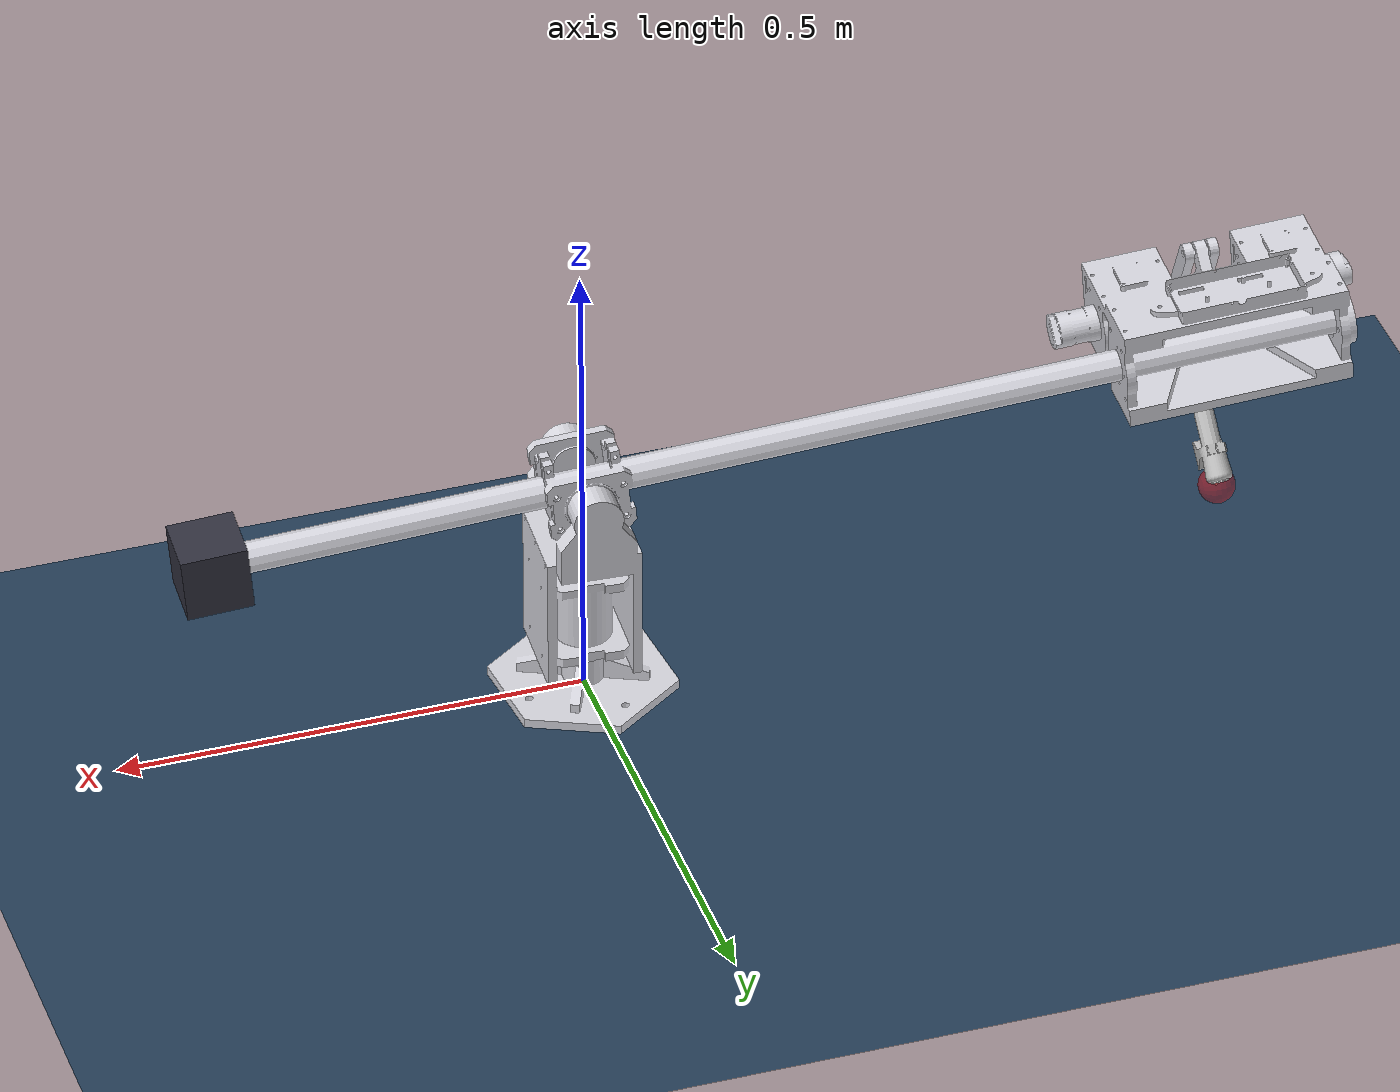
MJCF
<mujoco model="HOPPY scene">
  <!-- Scene = world (floor, light, sky) + the HOPPY robot.            -->
  <!-- Solver settings per rubrica Fase 3.1 (hard contact).            -->
  <include file="hoppy.xml"/>

  <option timestep="0.001" integrator="RK4" solver="Newton"
          iterations="50" tolerance="1e-8" gravity="0 0 -9.81"/>

  <visual>
    <headlight diffuse="0.6 0.6 0.6" ambient="0.3 0.3 0.3" specular="0 0 0"/>
    <rgba haze="0.15 0.25 0.35 1"/>
    <global azimuth="120" elevation="-20" offwidth="1280" offheight="720"/>
    <map force="0.05" zfar="30"/>
  </visual>

  <asset>
    <texture type="skybox" builtin="gradient" rgb1="0.3 0.5 0.7" rgb2="0 0 0"
             width="512" height="3072"/>
    <texture type="2d" name="groundplane" builtin="checker" mark="edge"
             rgb1="0.2 0.3 0.4" rgb2="0.1 0.2 0.3" markrgb="0.8 0.8 0.8"
             width="300" height="300"/>
    <material name="groundplane" texture="groundplane" texuniform="true"
              texrepeat="5 5" reflectance="0.2"/>
  </asset>

  <worldbody>
    <light pos="0 0 3.5" dir="0 0 -1" directional="true"/>
    <light pos="1 -1 2.0" dir="-0.5 0.5 -1"/>
    <!-- floor at z=0; foot rest height ~0.044 m so it drops into contact -->
    <geom name="floor" type="plane" size="0 0 0.05" material="groundplane"
          condim="3" friction="0.9 0.02 0.001"
          solref="0.004 1" solimp="0.95 0.99 0.001"/>
  </worldbody>
</mujoco>

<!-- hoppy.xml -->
<mujoco model="HOPPY-E0">
  <!--  HOPPY: monoped on a planarizing gantry (boom).               -->
  <!--  Kinematic tree from HOPPY-E0-final.urdf (SolidWorks export).  -->
  <!--  DoF map (rubrica Fase 1.1):                                   -->
  <!--    joint1 -> yaw    : gantry, PASSIVE  (boom sweep about tower) -->
  <!--    joint2 -> pitch  : gantry, PASSIVE  (vertical hop DoF)      -->
  <!--    joint3 -> hip    : leg,    ACTIVE                           -->
  <!--    joint4 -> knee   : leg,    ACTIVE  (+ parallel spring)      -->
  <!--  base_link is the central tower: rigidly fixed to the world.   -->
  <!--  Geometry is the FAITHFUL SolidWorks/URDF export: the leg swings -->
  <!--  in the boom's TANGENTIAL-vertical plane (hip/knee axes ~perp to -->
  <!--  pitch), so pushing off drives the passive yaw -> HOPPY HOPS     -->
  <!--  FORWARD, lapping the tower (its real locomotion). yaw is made    -->
  <!--  continuous (no range) and v_des sets the cruise speed (~1 lap/   -->
  <!--  9 s, rubrica Fase 4.4). Raise joint1 damping to brake -> in place.-->

  <compiler angle="radian" meshdir="meshes" autolimits="true"/>

  <!-- ====================== MOTOR PARAMETERS ====================== -->
  <!-- Physical motor: goBILDA 5202 series (RS-555 + planetary box).   -->
  <!-- HOPPY runs the SAME motor on hip & knee but with DIFFERENT gear -->
  <!-- ratios (CAD: 5202-..-0027). Authoritative constants are taken   -->
  <!-- from the HOPPY reference model (Simulator_MATLAB/get_params.m),  -->
  <!-- which the rubrica (1.2) mandates: N_H = 26.9, N_K = 28.8.        -->
  <!--   Gear ratio   N_H = 26.9 (hip),  N_K = 28.8 (knee)            -->
  <!--   Rotor inertia I_r = 7e-6 kg m^2  (HOPPY measured value)       -->
  <!--   Coil R = 1.30 ohm,  kT = 0.0135 N m/A,  kv = 0.0186 V s/rad   -->
  <!--   Limits  V <= 12 V,  I <= 30 A  (stall torque ~3.3 N m/joint)  -->
  <!--   Reflected rotor inertia (armature)  I_ref = N^2 * I_r:        -->
  <!--     hip : 26.9^2 * 7e-6 = 5.065e-3 kg m^2                       -->
  <!--     knee: 28.8^2 * 7e-6 = 5.806e-3 kg m^2                       -->
  <!--   Dissipation (rubrica 1.3) is split into its 3 named effects:  -->
  <!--     - back-EMF  b = kv*kT*N^2/R  (0.140 hip / 0.160 knee):      -->
  <!--       modeled EXPLICITLY by the voltage actuator in the brain   -->
  <!--       (tau->V->i->tau); NOT duplicated as joint damping.        -->
  <!--     - gearbox viscous loss -> joint damping = 0.02              -->
  <!--     - gearbox Coulomb friction -> frictionloss = 0.10           -->
  <!--   torque saturation: V<=12 V & I<=30 A bound tau to ~3.4 N m;   -->
  <!--     an explicit clip at tau_max=3.73 N m closes Fase 2.1.       -->
  <!--   encoder = 751.8 PPR out * 4 (quad) -> 2.086e-3 rad/count     -->
  <!--   yaw/pitch: passive gantry boom bearings, friction damping 0.2 -->
  <!--   Knee parallel spring: k = 30 N m/rad, rest = +0.30 rad        -->
  <!--   (stores/releases hop energy, rubrica 1.4)                     -->
  <!--   Leg geometry is the FAITHFUL URDF export (Link3/Link4 frames   -->
  <!--   and meshes untouched) -> tangential swing -> forward travel.   -->

  <default>
    <default class="hoppy">
      <geom contype="0" conaffinity="0" group="2" type="mesh" rgba="0.85 0.85 0.88 1"/>
      <joint type="hinge" frictionloss="0.0"/>
      <default class="gantry">         <!-- passive yaw / pitch -->
        <!-- boom-bearing viscous friction (rubrica 1.3). Yaw is the forward -->
        <!-- travel DoF; this damping just keeps it smooth, not locked.       -->
        <joint damping="0.2"/>
      </default>
      <default class="leg">            <!-- active hip / knee: see MOTOR block -->
        <!-- damping = gearbox VISCOUS loss only (back-EMF is in the voltage    -->
        <!-- actuator, so it is not double-counted here); frictionloss = Coulomb -->
        <joint damping="0.02" frictionloss="0.10"/>  <!-- armature per joint -->
      </default>
      <default class="foot">          <!-- point contact -->
        <geom contype="1" conaffinity="1" group="3" type="sphere" size="0.012"
              rgba="0.1 0.1 0.1 1" friction="0.9 0.02 0.001"
              solref="0.004 1" solimp="0.95 0.99 0.001"/>
      </default>
    </default>
  </default>

  <asset>
    <mesh name="base_link" file="base_link.STL"/>
    <mesh name="Link1"     file="Link1.STL"/>
    <mesh name="Link2"     file="Link2.STL"/>
    <mesh name="Link3"     file="Link3.STL"/>
    <mesh name="Link4"     file="Link4.STL"/>
  </asset>

  <worldbody>
    <!-- base_link: central tower, fixed to world -->
    <body name="base_link" childclass="hoppy">
      <geom mesh="base_link"/>

      <!-- joint1: YAW (passive gantry rotation about vertical) = the FORWARD   -->
      <!-- TRAVEL DoF. Made CONTINUOUS (no range limit) so HOPPY can lap the     -->
      <!-- tower endlessly (the URDF's ±180° was a SolidWorks export default     -->
      <!-- that stopped it half-way). `v_des` (controller) sets forward speed;   -->
      <!-- raise this joint's damping to a yaw brake (~18) to hop ~in place.     -->
      <body name="Link1" pos="0 0 0.04">
        <inertial pos="1.19035e-06 -7.23296e-08 0.110977"
                  quat="0.999539 -3.72317e-07 -1.22626e-05 -0.0303481"
                  mass="1.05189" diaginertia="0.0015755 0.00119525 0.000930447"/>
        <joint name="yaw" class="gantry" axis="0 0 1" limited="false"/>
        <geom mesh="Link1"/>

        <!-- joint2: PITCH (passive gantry elevation -> hop height) -->
        <body name="Link2" pos="-0.00227444 -0.037431 0.21"
              quat="0.705252 0.707058 0.00831865 -0.0511876">
          <inertial pos="-0.513966 0.0016327 -0.00902703"
                    quat="0.500001 0.500001 0.499999 0.499999"
                    mass="1.87654" diaginertia="0.0636508 0.0630427 0.00259304"/>
          <joint name="pitch" class="gantry" axis="0 0 1" range="-0.5 0.5"/>
          <geom mesh="Link2"/>

          <!-- COUNTERWEIGHT (rubrica 1.1): rigid mass on the +x boom tip,    -->
          <!-- opposite the leg. Full static balance about pitch = 3.40 kg;   -->
          <!-- we use ~70% (2.4 kg) so a net "body weight" remains and the    -->
          <!-- monoped actually falls/hops. TUNABLE: justify in your report.  -->
          <body name="counterweight" pos="0.39 0 -0.038">
            <geom name="cw" type="box" size="0.035 0.035 0.035" mass="2.4"
                  contype="0" conaffinity="0" group="2" rgba="0.20 0.20 0.25 1"/>
          </body>

          <!-- joint3: HIP (active) — FAITHFUL URDF geometry (no re-orient) -->
          <body name="Link3" pos="-0.6585 0 0.0425"
                quat="0.677009 -0.204104 -0.677009 0.204104">
            <inertial pos="0.00864428 -0.0327981 0.0561207"
                      quat="0.511267 0.498647 -0.497438 0.492456"
                      mass="0.332207" diaginertia="0.000345397 0.000299821 7.12146e-05"/>
            <joint name="hip" class="leg" axis="0 0 1" range="-0.5 0.9"
                   armature="0.005065"/>
            <geom mesh="Link3"/>

            <!-- joint4: KNEE (active + parallel spring) — FAITHFUL URDF -->
            <body name="Link4" pos="0 -0.1 0.0095"
                  quat="0 -0.288647 -0.957436 0">
              <inertial pos="-0.0162703 -0.0747425 -0.0260399"
                        quat="0.285014 0.647037 -0.285746 0.646884"
                        mass="0.172793" diaginertia="0.000170791 0.000165707 3.2109e-05"/>
              <joint name="knee" class="leg" axis="0 0 -1" range="-1.3 0.4"
                     armature="0.005806" stiffness="30" springref="0.30"/>
              <geom mesh="Link4" rgba="0.75 0.75 0.75 1"/>

              <geom name="foot" class="foot" pos="0.0229 -0.1824 -0.0275"/>
              <site name="foot" pos="0.0229 -0.1824 -0.0275" size="0.02" rgba="1 0 0 0.4"/>
            </body>
          </body>
        </body>
      </body>
    </body>
  </worldbody>

  <!-- ====================== ACTUATORS ============================= -->
  <!-- Direct torque (motor) on the two active leg joints; gantry     -->
  <!-- yaw/pitch are passive (no actuator). forcerange = torque sat.  -->
  <actuator>
    <motor name="hip"  joint="hip"  ctrlrange="-3.73 3.73" forcerange="-3.73 3.73"/>
    <motor name="knee" joint="knee" ctrlrange="-3.73 3.73" forcerange="-3.73 3.73"/>
  </actuator>

  <!-- ====================== SENSORS =============================== -->
  <!-- HOPPY's real sensor suite (Technical Guideline sec. VIII):       -->
  <!--  * jointpos/jointvel = the two incremental ENCODERS (hip, knee), -->
  <!--    consumed through EncoderEstimator (Fase 5.1).                  -->
  <!--  * foot_touch = the FOOT CONTACT SENSOR (CAD: Linear_Disp_Sensor  -->
  <!--    404R1KL1.0, a 1-inch linear potentiometer on the shank). This  -->
  <!--    touch sensor gives the contact force the FootContactSensor     -->
  <!--    turns into the foot displacement + binary contact switch that  -->
  <!--    drives touchdown/lift-off (Fase 3.2 / Fase 5).                 -->
  <!--  * foot_pos/foot_vel = Cartesian foot frame (Fase 4).            -->
  <sensor>
    <jointpos name="yaw_pos"   joint="yaw"/>
    <jointpos name="pitch_pos" joint="pitch"/>
    <jointpos name="hip_pos"   joint="hip"/>
    <jointpos name="knee_pos"  joint="knee"/>
    <jointvel name="hip_vel"   joint="hip"/>
    <jointvel name="knee_vel"  joint="knee"/>
    <touch    name="foot_touch" site="foot"/>   <!-- foot contact sensor input -->
    <framepos     name="foot_pos"  objtype="site" objname="foot"/>
    <framelinvel  name="foot_vel"  objtype="site" objname="foot"/>
  </sensor>
</mujoco>
